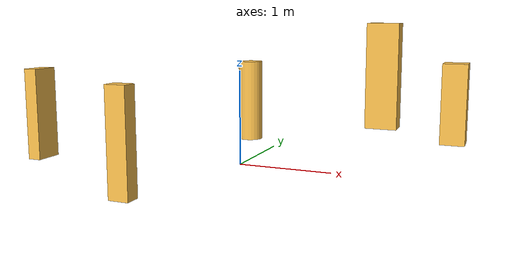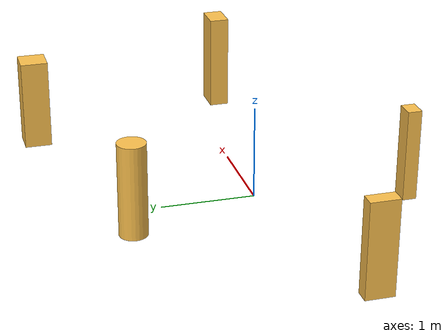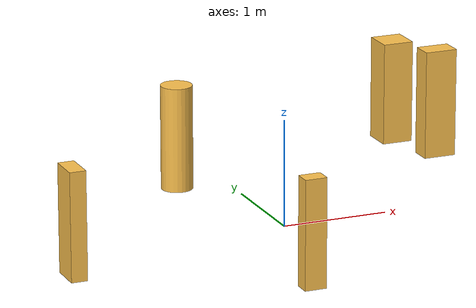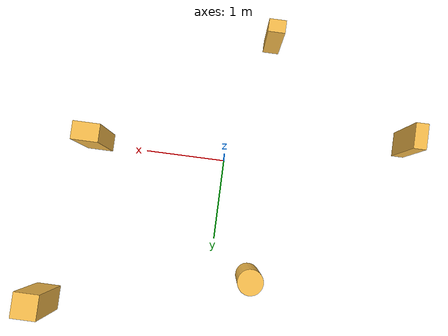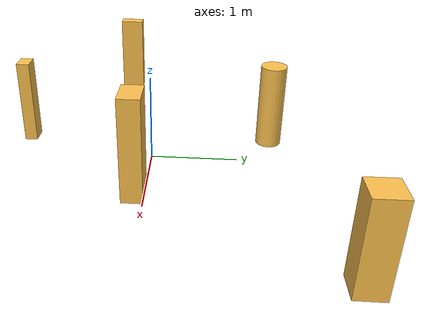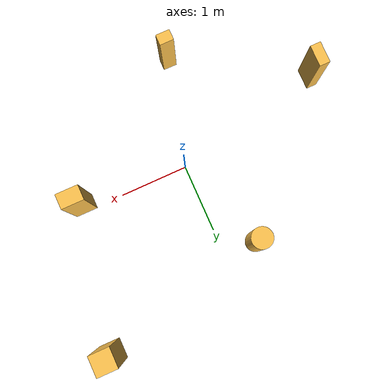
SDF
<?xml version='1.0'?>
<sdf version='1.5'>
  <model name='static_obstacle'>
    <link name='Column_3'>
      <pose frame=''>2.0 2.0 0 0 0 0</pose>
      <self_collide>0</self_collide>
      <kinematic>0</kinematic>
      <visual name='Column_3_Visual'>
        <pose frame=''>0 0 0.5 0 -0 0</pose>
        <geometry>
          <box>
            <size>0.3 0.3 1</size>
          </box>
        </geometry>
        <material>
          <script>
            <uri>file://media/materials/scripts/gazebo.material</uri>
            <name>Gazebo/Grey</name>
          </script>
          <ambient>1 0.764706 0.305882 1</ambient>
          <diffuse>0.7 0.7 0.7 1</diffuse>
          <specular>0.01 0.01 0.01 1</specular>
          <emissive>0 0 0 1</emissive>
          <shader type='pixel'/>
        </material>
        <cast_shadows>1</cast_shadows>
        <transparency>0</transparency>
      </visual>
      <collision name='Column_3_Collision'>
        <laser_retro>0</laser_retro>
        <max_contacts>10</max_contacts>
        <pose frame=''>0 0 0.5 0 -0 0</pose>
        <geometry>
          <box>
            <size>0.3 0.3 1</size>
          </box>
        </geometry>
        <surface>
          <friction>
            <ode>
              <mu>1</mu>
              <mu2>1</mu2>
              <fdir1>0 0 0</fdir1>
              <slip1>0</slip1>
              <slip2>0</slip2>
            </ode>
          </friction>
          <bounce>
            <restitution_coefficient>0</restitution_coefficient>
            <threshold>1e+06</threshold>
          </bounce>
          <contact>
            <collide_without_contact>0</collide_without_contact>
            <collide_without_contact_bitmask>1</collide_without_contact_bitmask>
            <collide_bitmask>1</collide_bitmask>
            <ode>
              <soft_cfm>0</soft_cfm>
              <soft_erp>0.2</soft_erp>
              <kp>1e+13</kp>
              <kd>1</kd>
              <max_vel>0.01</max_vel>
              <min_depth>0</min_depth>
            </ode>
            <bullet>
              <split_impulse>1</split_impulse>
              <split_impulse_penetration_threshold>-0.01</split_impulse_penetration_threshold>
              <soft_cfm>0</soft_cfm>
              <soft_erp>0.2</soft_erp>
              <kp>1e+13</kp>
              <kd>1</kd>
            </bullet>
          </contact>
        </surface>
      </collision>
    </link>

    <link name='Column_1'>
      <pose frame=''>-0.409926 -1.55115 0 0 -0 3.14159</pose>
      <self_collide>0</self_collide>
      <kinematic>0</kinematic>
      <visual name='Column_1_Visual'>
        <pose frame=''>0 0 0.5 0 -0 0</pose>
        <geometry>
          <box>
            <size>0.2 0.15 1</size>
          </box>
        </geometry>
        <material>
          <script>
            <uri>file://media/materials/scripts/gazebo.material</uri>
            <name>Gazebo/Grey</name>
          </script>
          <ambient>1 0.764706 0.305882 1</ambient>
          <diffuse>0.7 0.7 0.7 1</diffuse>
          <specular>0.01 0.01 0.01 1</specular>
          <emissive>0 0 0 1</emissive>
          <shader type='pixel'/>
        </material>
        <cast_shadows>1</cast_shadows>
        <transparency>0</transparency>
      </visual>
      <collision name='Column_1_Collision'>
        <laser_retro>0</laser_retro>
        <max_contacts>10</max_contacts>
        <pose frame=''>0 0 0.5 0 -0 0</pose>
        <geometry>
          <box>
            <size>0.2 0.15 1</size>
          </box>
        </geometry>
        <surface>
          <friction>
            <ode>
              <mu>1</mu>
              <mu2>1</mu2>
              <fdir1>0 0 0</fdir1>
              <slip1>0</slip1>
              <slip2>0</slip2>
            </ode>
          </friction>
          <bounce>
            <restitution_coefficient>0</restitution_coefficient>
            <threshold>1e+06</threshold>
          </bounce>
          <contact>
            <collide_without_contact>0</collide_without_contact>
            <collide_without_contact_bitmask>1</collide_without_contact_bitmask>
            <collide_bitmask>1</collide_bitmask>
            <ode>
              <soft_cfm>0</soft_cfm>
              <soft_erp>0.2</soft_erp>
              <kp>1e+13</kp>
              <kd>1</kd>
              <max_vel>0.01</max_vel>
              <min_depth>0</min_depth>
            </ode>
            <bullet>
              <split_impulse>1</split_impulse>
              <split_impulse_penetration_threshold>-0.01</split_impulse_penetration_threshold>
              <soft_cfm>0</soft_cfm>
              <soft_erp>0.2</soft_erp>
              <kp>1e+13</kp>
              <kd>1</kd>
            </bullet>
          </contact>
        </surface>
      </collision>
    </link>
    <link name='Column_2'>
      <pose frame=''>-2.2 -0.5 0 0 -0 1.5708</pose>
      <self_collide>0</self_collide>
      <kinematic>0</kinematic>
      <visual name='Column_2_Visual'>
        <pose frame=''>0 0 0.5 0 -0 0</pose>
        <geometry>
          <box>
            <size>0.3 0.15 1</size>
          </box>
        </geometry>
        <material>
          <script>
            <uri>file://media/materials/scripts/gazebo.material</uri>
            <name>Gazebo/Grey</name>
          </script>
          <ambient>1 0.764706 0.305882 1</ambient>
          <diffuse>0.7 0.7 0.7 1</diffuse>
          <specular>0.01 0.01 0.01 1</specular>
          <emissive>0 0 0 1</emissive>
          <shader type='pixel'/>
        </material>
        <cast_shadows>1</cast_shadows>
        <transparency>0</transparency>
      </visual>
      <collision name='Column_2_Collision'>
        <laser_retro>0</laser_retro>
        <max_contacts>10</max_contacts>
        <pose frame=''>0 0 0.5 0 -0 0</pose>
        <geometry>
          <box>
            <size>0.3 0.15 1</size>
          </box>
        </geometry>
        <surface>
          <friction>
            <ode>
              <mu>1</mu>
              <mu2>1</mu2>
              <fdir1>0 0 0</fdir1>
              <slip1>0</slip1>
              <slip2>0</slip2>
            </ode>
          </friction>
          <bounce>
            <restitution_coefficient>0</restitution_coefficient>
            <threshold>1e+06</threshold>
          </bounce>
          <contact>
            <collide_without_contact>0</collide_without_contact>
            <collide_without_contact_bitmask>1</collide_without_contact_bitmask>
            <collide_bitmask>1</collide_bitmask>
            <ode>
              <soft_cfm>0</soft_cfm>
              <soft_erp>0.2</soft_erp>
              <kp>1e+13</kp>
              <kd>1</kd>
              <max_vel>0.01</max_vel>
              <min_depth>0</min_depth>
            </ode>
            <bullet>
              <split_impulse>1</split_impulse>
              <split_impulse_penetration_threshold>-0.01</split_impulse_penetration_threshold>
              <soft_cfm>0</soft_cfm>
              <soft_erp>0.2</soft_erp>
              <kp>1e+13</kp>
              <kd>1</kd>
            </bullet>
          </contact>
        </surface>
      </collision>
    </link>
    <link name='Column_4'>
      <pose frame=''>1.5 0.0 0.5 0 -0 3.14159</pose>
      <self_collide>0</self_collide>
      <kinematic>0</kinematic>
      <visual name='Column_4_Visual'>
        <pose frame=''>0 0 0.5 0 -0 0</pose>
        <geometry>
          <box>
            <size>0.3 0.2 1</size>
          </box>
        </geometry>
        <material>
          <script>
            <uri>file://media/materials/scripts/gazebo.material</uri>
            <name>Gazebo/Grey</name>
          </script>
          <ambient>1 0.764706 0.305882 1</ambient>
          <diffuse>0.7 0.7 0.7 1</diffuse>
          <specular>0.01 0.01 0.01 1</specular>
          <emissive>0 0 0 1</emissive>
          <shader type='pixel'/>
        </material>
        <cast_shadows>1</cast_shadows>
        <transparency>0</transparency>
      </visual>
      <collision name='Column_4_Collision'>
        <laser_retro>0</laser_retro>
        <max_contacts>10</max_contacts>
        <pose frame=''>0 0 0.5 0 -0 0</pose>
        <geometry>
          <box>
            <size>0.3 0.2 1</size>
          </box>
        </geometry>
        <surface>
          <friction>
            <ode>
              <mu>1</mu>
              <mu2>1</mu2>
              <fdir1>0 0 0</fdir1>
              <slip1>0</slip1>
              <slip2>0</slip2>
            </ode>
          </friction>
          <bounce>
            <restitution_coefficient>0</restitution_coefficient>
            <threshold>1e+06</threshold>
          </bounce>
          <contact>
            <collide_without_contact>0</collide_without_contact>
            <collide_without_contact_bitmask>1</collide_without_contact_bitmask>
            <collide_bitmask>1</collide_bitmask>
            <ode>
              <soft_cfm>0</soft_cfm>
              <soft_erp>0.2</soft_erp>
              <kp>1e+13</kp>
              <kd>1</kd>
              <max_vel>0.01</max_vel>
              <min_depth>0</min_depth>
            </ode>
          </contact>
        </surface>
      </collision>
    </link>
    <link name='Cylinder_1'>
      <pose frame=''>-0.48 1.4 0 0 -0 2.02352</pose>
      <self_collide>0</self_collide>
      <kinematic>0</kinematic>
      <visual name='Cylinder_1_Visual'>
        <pose frame=''>0 0 0.5 0 -0 0</pose>
        <geometry>
          <cylinder>
            <radius>.15</radius>
            <length>1.0</length>
          </cylinder>
        </geometry>
        <material>
          <script>
            <uri>file://media/materials/scripts/gazebo.material</uri>
            <name>Gazebo/Grey</name>
          </script>
          <ambient>1 0.764706 0.305882 1</ambient>
          <diffuse>0.7 0.7 0.7 1</diffuse>
          <specular>0.01 0.01 0.01 1</specular>
          <emissive>0 0 0 1</emissive>
          <shader type='pixel'/>
        </material>
        <cast_shadows>1</cast_shadows>
        <transparency>0</transparency>
      </visual>
      <collision name='Cylinder_1_Collision'>
        <laser_retro>0</laser_retro>
        <max_contacts>10</max_contacts>
        <pose frame=''>0 0 0.5 0 -0 0</pose>
        <geometry>
         <cylinder>
            <radius>.15</radius>
            <length>1.0</length>
          </cylinder>
        </geometry>
        <surface>
          <friction>
            <ode>
              <mu>1</mu>
              <mu2>1</mu2>
              <fdir1>0 0 0</fdir1>
              <slip1>0</slip1>
              <slip2>0</slip2>
            </ode>
          </friction>
          <bounce>
            <restitution_coefficient>0</restitution_coefficient>
            <threshold>1e+06</threshold>
          </bounce>
          <contact>
            <collide_without_contact>0</collide_without_contact>
            <collide_without_contact_bitmask>1</collide_without_contact_bitmask>
            <collide_bitmask>1</collide_bitmask>
            <ode>
              <soft_cfm>0</soft_cfm>
              <soft_erp>0.2</soft_erp>
              <kp>1e+13</kp>
              <kd>1</kd>
              <max_vel>0.01</max_vel>
              <min_depth>0</min_depth>
            </ode>
          </contact>
        </surface>
      </collision>
    </link>

    <static>1</static>
    <allow_auto_disable>1</allow_auto_disable>
  </model>

</sdf>
